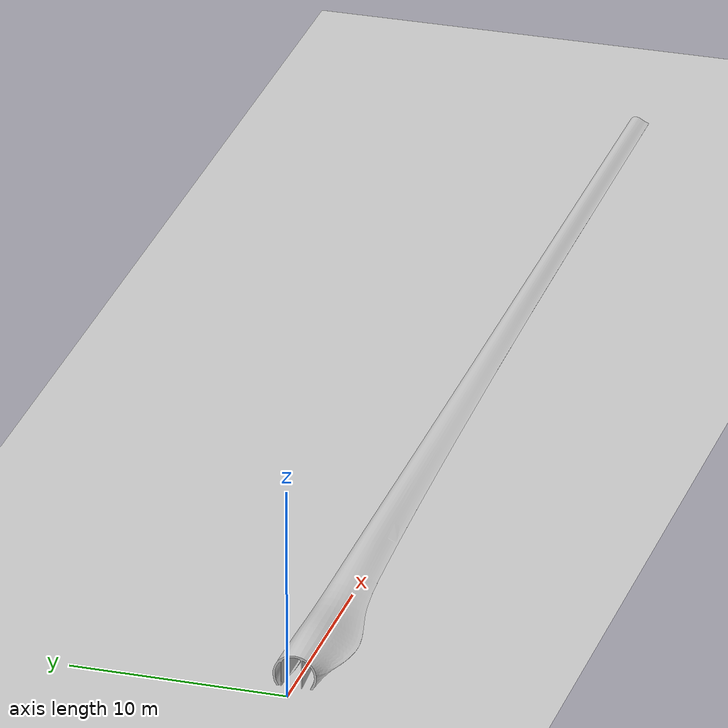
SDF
<?xml version="1.0" ?>
<sdf version="1.5">
  <world name="default">
    <!-- A global light source -->
    <light type="directional" name="sun">
      <cast_shadows>true</cast_shadows>
      <pose>0 0 10 0 0 0</pose>
      <diffuse>0.8 0.8 0.8 1</diffuse>
      <specular>0.2 0.2 0.2 1</specular>
      <attenuation>
        <range>1000</range>
        <constant>0.9</constant>
        <linear>0.01</linear>
        <quadratic>0.001</quadratic>
      </attenuation>
      <direction>-0.5 0.1 -0.9</direction>
    </light>
    <!-- A ground plane -->
    <model name="ground_plane">
      <static>true</static>
      <link name="link">
        <collision name="collision">
          <geometry>
            <plane>
              <normal>0 0 1</normal>
              <size>100 100</size>
            </plane>
          </geometry>
        </collision>
        <visual name="visual">
          <geometry>
            <plane>
              <normal>0 0 1</normal>
              <size>100 100</size>
            </plane>
          </geometry>
          <material>
            <ambient>0.8 0.8 0.8 1</ambient>
            <diffuse>0.8 0.8 0.8 1</diffuse>
            <specular>0.8 0.8 0.8 1</specular>
          </material>
        </visual>
      </link>
    </model>
    <!-- Include Wind Turbine Model -->
    <include>
      <uri>model://wind_turbine</uri>
      <pose> 0 0 -0.5 0 0 0</pose>
    </include>
  </world>
</sdf>

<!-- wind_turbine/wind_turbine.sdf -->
<sdf version='1.5'>
  <model name="wind-turbine">
    <static>true</static>

    <link name="body">
      <pose>1 0 1 0 0 0</pose>
      <visual name="visual">
        <pose>0 0 0 0 0 0</pose>
        <geometry>
          <mesh>
            <uri>model://wind_turbine/mesh/wind_turbine_wing_30m.stl</uri>
            <scale>2 2 2</scale>
          </mesh>
        </geometry>
        <material>
          <ambient>0.3 0.3 0.3 1</ambient>
          <diffuse>0.8 0.8 0.8 1</diffuse>
          <specular>0.2 0.2 0.2 1</specular>
        </material>
      </visual>
      <collision name="collision">
        <pose>0 0 0 0 0 0</pose>
        <geometry>
          <mesh>
            <uri>model://wind_turbine/mesh/wind_turbine_wing_30m.stl</uri>
            <scale>2 2 2</scale>
          </mesh>
        </geometry>
      </collision>
    </link>
  </model>
</sdf>
